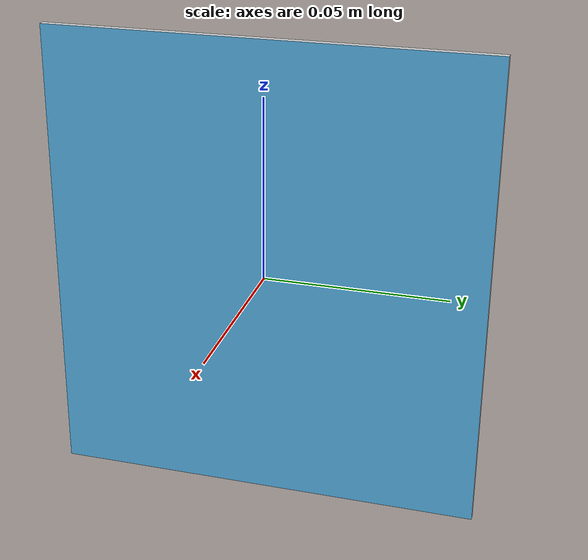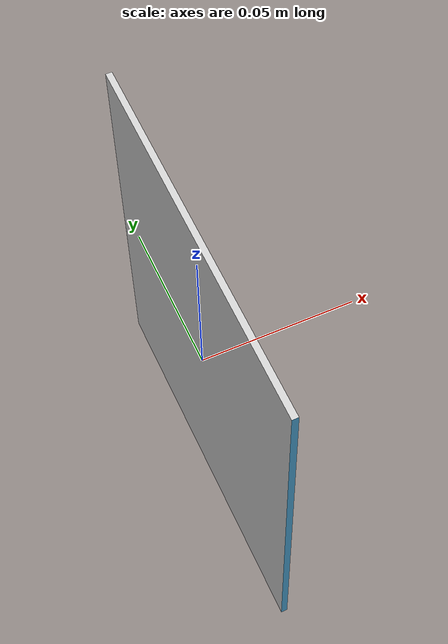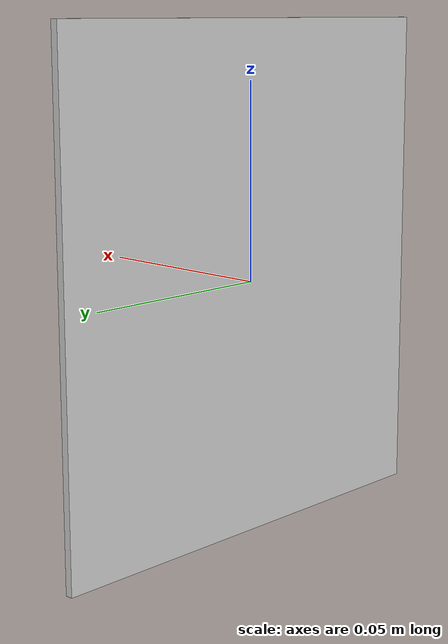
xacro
<robot name="ar_2020" xmlns:xacro="http://www.ros.org/wiki/xacro">
<xacro:arg name="name" default="turtle_ar"/>
<xacro:arg name="x_pos" default="0.0"/>
<xacro:arg name="y_pos" default="0.0"/>
<xacro:arg name="z_pos" default="0.0"/>

<link name="world"/>

<joint name="ar_joint" type="fixed">
    <parent link="world"/>
    <child link="$(arg name)"/>
    <origin xyz="$(arg x_pos) $(arg y_pos) $(arg z_pos)" rpy="0 0 0 "/>
</joint>

<link name="$(arg name)">
    <inertial>
        <origin xyz="0 0 0" rpy="0 0 0"/>
        <mass value="1.0"/>
        <inertia ixx="0.0741666667" ixy="0.0" ixz="0.0" iyy="0.05854166667" iyz="0.0" izz="0.0260416667"/>
    </inertial>
    <collision>
        <origin xyz="0 0 0" rpy="0 0 0"/>
        <geometry>
            <box size="0.2 0.2 0.2"/>
        </geometry>
    </collision>
    <visual>
        <origin xyz="0 0 0" rpy="0 1.57 0"/>
        <geometry>
            <mesh filename="package://turtlebot_description/meshes/ar.dae"/>
        </geometry>
    </visual>
</link>

<gazebo reference="$(arg name)">
    <kp>10.0</kp>
    <kd>10.0</kd>
    <mu1>0.1</mu1>
    <mu2>0.1</mu2>
    <fdir1>1 0 0</fdir1>
</gazebo>
</robot>
